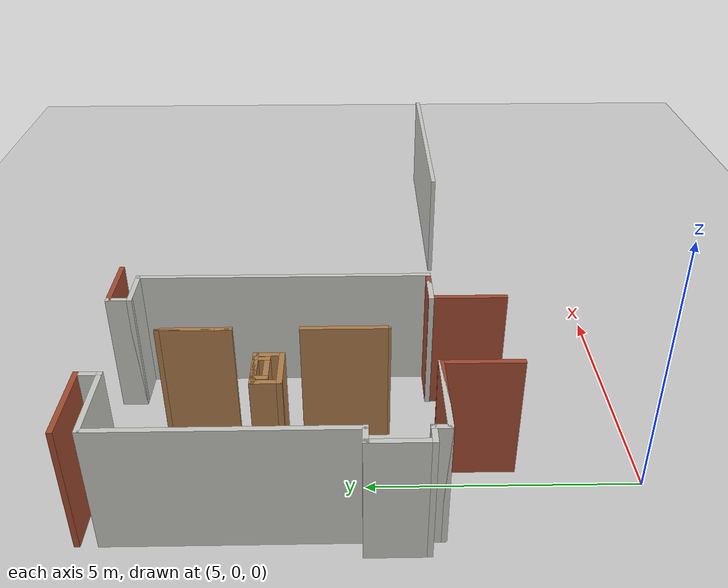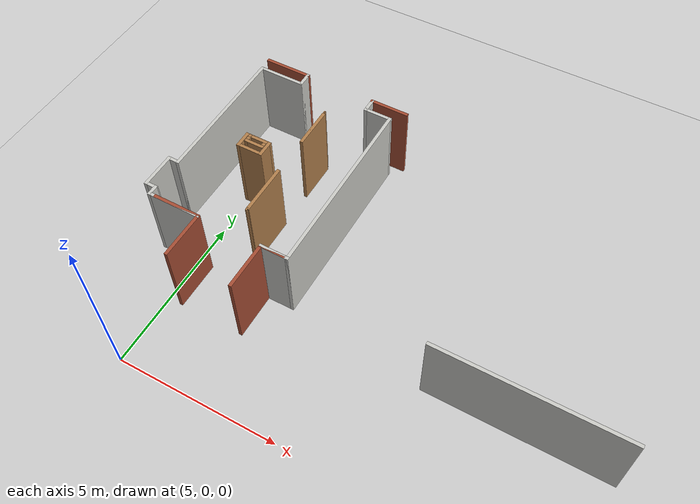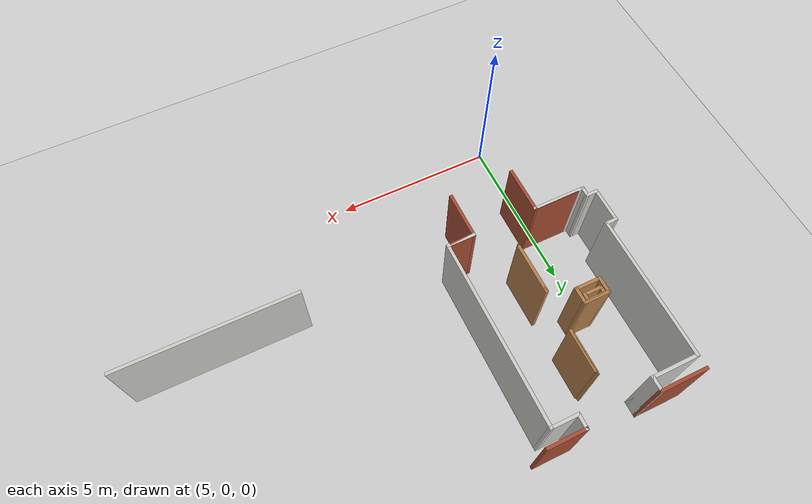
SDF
<sdf version="1.7">
 <world name="default">
  <model name="ground_plane">
   <static>1</static>
   <link name="link">
    <collision name="collision">
     <geometry><plane><normal>0 0 1</normal><size>100 100</size></plane></geometry>
     <surface><friction><ode><mu>100</mu><mu2>50</mu2></ode></friction></surface>
    </collision>
    <visual name="visual">
     <cast_shadows>0</cast_shadows>
     <geometry><plane><normal>0 0 1</normal><size>100 100</size></plane></geometry>
     <material>
      <script><uri>file://media/materials/scripts/gazebo.material</uri><name>Gazebo/Grey</name></script>
     </material>
    </visual>
   </link>
  </model>
  <model name="miraikan_5F_gate_and_elevator">
   <link name="Wall_268">
    <pose>18.385 5.81 0 0 -0 0</pose>
    <visual name="Wall_268_Visual">
     <pose>0 0 1.25 0 -0 0</pose>
     <geometry><box><size>5.47 0.1 2.5</size></box></geometry>
     <material>
      <script><uri>file://media/materials/scripts/gazebo.material</uri><name>Gazebo/CeilingTiled</name></script>
      <ambient>1 1 1 1</ambient>
      <shader type="pixel"/>
     </material>
     <meta><layer>0</layer></meta>
    </visual>
    <collision name="Wall_268_Collision">
     <pose>0 0 1.25 0 -0 0</pose>
     <geometry><box><size>5.47 0.1 2.5</size></box></geometry>
     <surface>
      <friction>
       <ode><mu>1</mu><mu2>1</mu2><fdir1>0 0 0</fdir1><slip1>0</slip1><slip2>0</slip2></ode>
       <torsional>
        <coefficient>1</coefficient>
        <patch_radius>0</patch_radius>
        <surface_radius>0</surface_radius>
        <use_patch_radius>1</use_patch_radius>
        <ode><slip>0</slip></ode>
       </torsional>
      </friction>
      <bounce><restitution_coefficient>0</restitution_coefficient><threshold>1e+06</threshold></bounce>
      <contact>
       <collide_without_contact>0</collide_without_contact>
       <collide_without_contact_bitmask>1</collide_without_contact_bitmask>
       <collide_bitmask>1</collide_bitmask>
       <ode>
        <soft_cfm>0</soft_cfm>
        <soft_erp>0.2</soft_erp>
        <kp>1e+13</kp>
        <kd>1</kd>
        <max_vel>0.01</max_vel>
        <min_depth>0</min_depth>
       </ode>
       <bullet>
        <split_impulse>1</split_impulse>
        <split_impulse_penetration_threshold>-0.01</split_impulse_penetration_threshold>
        <soft_cfm>0</soft_cfm>
        <soft_erp>0.2</soft_erp>
        <kp>1e+13</kp>
        <kd>1</kd>
       </bullet>
      </contact>
     </surface>
    </collision>
   </link>
   <link name="Wall_313">
    <pose>10.96 6.28 0 0 -0 0</pose>
    <visual name="Wall_313_Visual">
     <pose>0 0 1.25 0 -0 0</pose>
     <geometry><box><size>0.92 0.1 2.5</size></box></geometry>
     <material>
      <script><uri>file://media/materials/scripts/gazebo.material</uri><name>Gazebo/CeilingTiled</name></script>
      <ambient>1 1 1 1</ambient>
      <shader type="pixel"/>
     </material>
     <meta><layer>0</layer></meta>
    </visual>
    <collision name="Wall_313_Collision">
     <pose>0 0 1.25 0 -0 0</pose>
     <geometry><box><size>0.92 0.1 2.5</size></box></geometry>
     <surface>
      <friction>
       <ode><mu>1</mu><mu2>1</mu2><fdir1>0 0 0</fdir1><slip1>0</slip1><slip2>0</slip2></ode>
       <torsional>
        <coefficient>1</coefficient>
        <patch_radius>0</patch_radius>
        <surface_radius>0</surface_radius>
        <use_patch_radius>1</use_patch_radius>
        <ode><slip>0</slip></ode>
       </torsional>
      </friction>
      <bounce><restitution_coefficient>0</restitution_coefficient><threshold>1e+06</threshold></bounce>
      <contact>
       <collide_without_contact>0</collide_without_contact>
       <collide_without_contact_bitmask>1</collide_without_contact_bitmask>
       <collide_bitmask>1</collide_bitmask>
       <ode>
        <soft_cfm>0</soft_cfm>
        <soft_erp>0.2</soft_erp>
        <kp>1e+13</kp>
        <kd>1</kd>
        <max_vel>0.01</max_vel>
        <min_depth>0</min_depth>
       </ode>
       <bullet>
        <split_impulse>1</split_impulse>
        <split_impulse_penetration_threshold>-0.01</split_impulse_penetration_threshold>
        <soft_cfm>0</soft_cfm>
        <soft_erp>0.2</soft_erp>
        <kp>1e+13</kp>
        <kd>1</kd>
       </bullet>
      </contact>
     </surface>
    </collision>
   </link>
   <link name="Wall_315">
    <pose>7.725 6.28 0 0 -0 3.14159</pose>
    <visual name="Wall_315_Visual">
     <pose>0 0 1.25 0 -0 0</pose>
     <geometry><box><size>1.71 0.1 2.5</size></box></geometry>
     <material>
      <script><uri>file://media/materials/scripts/gazebo.material</uri><name>Gazebo/CeilingTiled</name></script>
      <ambient>1 1 1 1</ambient>
      <shader type="pixel"/>
     </material>
     <meta><layer>0</layer></meta>
    </visual>
    <collision name="Wall_315_Collision">
     <pose>0 0 1.25 0 -0 0</pose>
     <geometry><box><size>1.71 0.1 2.5</size></box></geometry>
     <surface>
      <friction>
       <ode><mu>1</mu><mu2>1</mu2><fdir1>0 0 0</fdir1><slip1>0</slip1><slip2>0</slip2></ode>
       <torsional>
        <coefficient>1</coefficient>
        <patch_radius>0</patch_radius>
        <surface_radius>0</surface_radius>
        <use_patch_radius>1</use_patch_radius>
        <ode><slip>0</slip></ode>
       </torsional>
      </friction>
      <bounce><restitution_coefficient>0</restitution_coefficient><threshold>1e+06</threshold></bounce>
      <contact>
       <collide_without_contact>0</collide_without_contact>
       <collide_without_contact_bitmask>1</collide_without_contact_bitmask>
       <collide_bitmask>1</collide_bitmask>
       <ode>
        <soft_cfm>0</soft_cfm>
        <soft_erp>0.2</soft_erp>
        <kp>1e+13</kp>
        <kd>1</kd>
        <max_vel>0.01</max_vel>
        <min_depth>0</min_depth>
       </ode>
       <bullet>
        <split_impulse>1</split_impulse>
        <split_impulse_penetration_threshold>-0.01</split_impulse_penetration_threshold>
        <soft_cfm>0</soft_cfm>
        <soft_erp>0.2</soft_erp>
        <kp>1e+13</kp>
        <kd>1</kd>
       </bullet>
      </contact>
     </surface>
    </collision>
   </link>
   <link name="Wall_321">
    <pose>6.92 6.41 0 0 -0 1.5708</pose>
    <visual name="Wall_321_Visual">
     <pose>0 0 1.25 0 -0 0</pose>
     <geometry><box><size>0.36 0.1 2.5</size></box></geometry>
     <material>
      <script><uri>file://media/materials/scripts/gazebo.material</uri><name>Gazebo/CeilingTiled</name></script>
      <ambient>1 1 1 1</ambient>
      <shader type="pixel"/>
     </material>
     <meta><layer>0</layer></meta>
    </visual>
    <collision name="Wall_321_Collision">
     <pose>0 0 1.25 0 -0 0</pose>
     <geometry><box><size>0.36 0.1 2.5</size></box></geometry>
     <surface>
      <friction>
       <ode><mu>1</mu><mu2>1</mu2><fdir1>0 0 0</fdir1><slip1>0</slip1><slip2>0</slip2></ode>
       <torsional>
        <coefficient>1</coefficient>
        <patch_radius>0</patch_radius>
        <surface_radius>0</surface_radius>
        <use_patch_radius>1</use_patch_radius>
        <ode><slip>0</slip></ode>
       </torsional>
      </friction>
      <bounce><restitution_coefficient>0</restitution_coefficient><threshold>1e+06</threshold></bounce>
      <contact>
       <collide_without_contact>0</collide_without_contact>
       <collide_without_contact_bitmask>1</collide_without_contact_bitmask>
       <collide_bitmask>1</collide_bitmask>
       <ode>
        <soft_cfm>0</soft_cfm>
        <soft_erp>0.2</soft_erp>
        <kp>1e+13</kp>
        <kd>1</kd>
        <max_vel>0.01</max_vel>
        <min_depth>0</min_depth>
       </ode>
       <bullet>
        <split_impulse>1</split_impulse>
        <split_impulse_penetration_threshold>-0.01</split_impulse_penetration_threshold>
        <soft_cfm>0</soft_cfm>
        <soft_erp>0.2</soft_erp>
        <kp>1e+13</kp>
        <kd>1</kd>
       </bullet>
      </contact>
     </surface>
    </collision>
   </link>
   <link name="Wall_323">
    <pose>6.765 6.54 0 0 -0 3.14159</pose>
    <visual name="Wall_323_Visual">
     <pose>0 0 1.25 0 -0 0</pose>
     <geometry><box><size>0.41 0.1 2.5</size></box></geometry>
     <material>
      <script><uri>file://media/materials/scripts/gazebo.material</uri><name>Gazebo/CeilingTiled</name></script>
      <ambient>1 1 1 1</ambient>
      <shader type="pixel"/>
     </material>
     <meta><layer>0</layer></meta>
    </visual>
    <collision name="Wall_323_Collision">
     <pose>0 0 1.25 0 -0 0</pose>
     <geometry><box><size>0.41 0.1 2.5</size></box></geometry>
     <surface>
      <friction>
       <ode><mu>1</mu><mu2>1</mu2><fdir1>0 0 0</fdir1><slip1>0</slip1><slip2>0</slip2></ode>
       <torsional>
        <coefficient>1</coefficient>
        <patch_radius>0</patch_radius>
        <surface_radius>0</surface_radius>
        <use_patch_radius>1</use_patch_radius>
        <ode><slip>0</slip></ode>
       </torsional>
      </friction>
      <bounce><restitution_coefficient>0</restitution_coefficient><threshold>1e+06</threshold></bounce>
      <contact>
       <collide_without_contact>0</collide_without_contact>
       <collide_without_contact_bitmask>1</collide_without_contact_bitmask>
       <collide_bitmask>1</collide_bitmask>
       <ode>
        <soft_cfm>0</soft_cfm>
        <soft_erp>0.2</soft_erp>
        <kp>1e+13</kp>
        <kd>1</kd>
        <max_vel>0.01</max_vel>
        <min_depth>0</min_depth>
       </ode>
       <bullet>
        <split_impulse>1</split_impulse>
        <split_impulse_penetration_threshold>-0.01</split_impulse_penetration_threshold>
        <soft_cfm>0</soft_cfm>
        <soft_erp>0.2</soft_erp>
        <kp>1e+13</kp>
        <kd>1</kd>
       </bullet>
      </contact>
     </surface>
    </collision>
   </link>
   <link name="Wall_326">
    <pose>6.61 7.065 0 0 -0 1.5708</pose>
    <visual name="Wall_326_Visual">
     <pose>0 0 1.25 0 -0 0</pose>
     <geometry><box><size>1.15 0.1 2.5</size></box></geometry>
     <material>
      <script><uri>file://media/materials/scripts/gazebo.material</uri><name>Gazebo/CeilingTiled</name></script>
      <ambient>1 1 1 1</ambient>
      <shader type="pixel"/>
     </material>
     <meta><layer>0</layer></meta>
    </visual>
    <collision name="Wall_326_Collision">
     <pose>0 0 1.25 0 -0 0</pose>
     <geometry><box><size>1.15 0.1 2.5</size></box></geometry>
     <surface>
      <friction>
       <ode><mu>1</mu><mu2>1</mu2><fdir1>0 0 0</fdir1><slip1>0</slip1><slip2>0</slip2></ode>
       <torsional>
        <coefficient>1</coefficient>
        <patch_radius>0</patch_radius>
        <surface_radius>0</surface_radius>
        <use_patch_radius>1</use_patch_radius>
        <ode><slip>0</slip></ode>
       </torsional>
      </friction>
      <bounce><restitution_coefficient>0</restitution_coefficient><threshold>1e+06</threshold></bounce>
      <contact>
       <collide_without_contact>0</collide_without_contact>
       <collide_without_contact_bitmask>1</collide_without_contact_bitmask>
       <collide_bitmask>1</collide_bitmask>
       <ode>
        <soft_cfm>0</soft_cfm>
        <soft_erp>0.2</soft_erp>
        <kp>1e+13</kp>
        <kd>1</kd>
        <max_vel>0.01</max_vel>
        <min_depth>0</min_depth>
       </ode>
       <bullet>
        <split_impulse>1</split_impulse>
        <split_impulse_penetration_threshold>-0.01</split_impulse_penetration_threshold>
        <soft_cfm>0</soft_cfm>
        <soft_erp>0.2</soft_erp>
        <kp>1e+13</kp>
        <kd>1</kd>
       </bullet>
      </contact>
     </surface>
    </collision>
   </link>
   <link name="Wall_328">
    <pose>6.765 7.59 0 0 -0 0</pose>
    <visual name="Wall_328_Visual">
     <pose>0 0 1.25 0 -0 0</pose>
     <geometry><box><size>0.41 0.1 2.5</size></box></geometry>
     <material>
      <script><uri>file://media/materials/scripts/gazebo.material</uri><name>Gazebo/CeilingTiled</name></script>
      <ambient>1 1 1 1</ambient>
      <shader type="pixel"/>
     </material>
     <meta><layer>0</layer></meta>
    </visual>
    <collision name="Wall_328_Collision">
     <pose>0 0 1.25 0 -0 0</pose>
     <geometry><box><size>0.41 0.1 2.5</size></box></geometry>
     <surface>
      <friction>
       <ode><mu>1</mu><mu2>1</mu2><fdir1>0 0 0</fdir1><slip1>0</slip1><slip2>0</slip2></ode>
       <torsional>
        <coefficient>1</coefficient>
        <patch_radius>0</patch_radius>
        <surface_radius>0</surface_radius>
        <use_patch_radius>1</use_patch_radius>
        <ode><slip>0</slip></ode>
       </torsional>
      </friction>
      <bounce><restitution_coefficient>0</restitution_coefficient><threshold>1e+06</threshold></bounce>
      <contact>
       <collide_without_contact>0</collide_without_contact>
       <collide_without_contact_bitmask>1</collide_without_contact_bitmask>
       <collide_bitmask>1</collide_bitmask>
       <ode>
        <soft_cfm>0</soft_cfm>
        <soft_erp>0.2</soft_erp>
        <kp>1e+13</kp>
        <kd>1</kd>
        <max_vel>0.01</max_vel>
        <min_depth>0</min_depth>
       </ode>
       <bullet>
        <split_impulse>1</split_impulse>
        <split_impulse_penetration_threshold>-0.01</split_impulse_penetration_threshold>
        <soft_cfm>0</soft_cfm>
        <soft_erp>0.2</soft_erp>
        <kp>1e+13</kp>
        <kd>1</kd>
       </bullet>
      </contact>
     </surface>
    </collision>
   </link>
   <link name="Wall_330">
    <pose>6.92 9.785 0 0 -0 1.5708</pose>
    <visual name="Wall_330_Visual">
     <pose>0 0 1.25 0 -0 0</pose>
     <geometry><box><size>4.49 0.1 2.5</size></box></geometry>
     <material>
      <script><uri>file://media/materials/scripts/gazebo.material</uri><name>Gazebo/CeilingTiled</name></script>
      <ambient>1 1 1 1</ambient>
      <shader type="pixel"/>
     </material>
     <meta><layer>0</layer></meta>
    </visual>
    <collision name="Wall_330_Collision">
     <pose>0 0 1.25 0 -0 0</pose>
     <geometry><box><size>4.49 0.1 2.5</size></box></geometry>
     <surface>
      <friction>
       <ode><mu>1</mu><mu2>1</mu2><fdir1>0 0 0</fdir1><slip1>0</slip1><slip2>0</slip2></ode>
       <torsional>
        <coefficient>1</coefficient>
        <patch_radius>0</patch_radius>
        <surface_radius>0</surface_radius>
        <use_patch_radius>1</use_patch_radius>
        <ode><slip>0</slip></ode>
       </torsional>
      </friction>
      <bounce><restitution_coefficient>0</restitution_coefficient><threshold>1e+06</threshold></bounce>
      <contact>
       <collide_without_contact>0</collide_without_contact>
       <collide_without_contact_bitmask>1</collide_without_contact_bitmask>
       <collide_bitmask>1</collide_bitmask>
       <ode>
        <soft_cfm>0</soft_cfm>
        <soft_erp>0.2</soft_erp>
        <kp>1e+13</kp>
        <kd>1</kd>
        <max_vel>0.01</max_vel>
        <min_depth>0</min_depth>
       </ode>
       <bullet>
        <split_impulse>1</split_impulse>
        <split_impulse_penetration_threshold>-0.01</split_impulse_penetration_threshold>
        <soft_cfm>0</soft_cfm>
        <soft_erp>0.2</soft_erp>
        <kp>1e+13</kp>
        <kd>1</kd>
       </bullet>
      </contact>
     </surface>
    </collision>
   </link>
   <link name="Wall_332">
    <pose>7.62 11.98 0 0 -0 0</pose>
    <visual name="Wall_332_Visual">
     <pose>0 0 1.25 0 -0 0</pose>
     <geometry><box><size>1.5 0.1 2.5</size></box></geometry>
     <material>
      <script><uri>file://media/materials/scripts/gazebo.material</uri><name>Gazebo/CeilingTiled</name></script>
      <ambient>1 1 1 1</ambient>
      <shader type="pixel"/>
     </material>
     <meta><layer>0</layer></meta>
    </visual>
    <collision name="Wall_332_Collision">
     <pose>0 0 1.25 0 -0 0</pose>
     <geometry><box><size>1.5 0.1 2.5</size></box></geometry>
     <surface>
      <friction>
       <ode><mu>1</mu><mu2>1</mu2><fdir1>0 0 0</fdir1><slip1>0</slip1><slip2>0</slip2></ode>
       <torsional>
        <coefficient>1</coefficient>
        <patch_radius>0</patch_radius>
        <surface_radius>0</surface_radius>
        <use_patch_radius>1</use_patch_radius>
        <ode><slip>0</slip></ode>
       </torsional>
      </friction>
      <bounce><restitution_coefficient>0</restitution_coefficient><threshold>1e+06</threshold></bounce>
      <contact>
       <collide_without_contact>0</collide_without_contact>
       <collide_without_contact_bitmask>1</collide_without_contact_bitmask>
       <collide_bitmask>1</collide_bitmask>
       <ode>
        <soft_cfm>0</soft_cfm>
        <soft_erp>0.2</soft_erp>
        <kp>1e+13</kp>
        <kd>1</kd>
        <max_vel>0.01</max_vel>
        <min_depth>0</min_depth>
       </ode>
       <bullet>
        <split_impulse>1</split_impulse>
        <split_impulse_penetration_threshold>-0.01</split_impulse_penetration_threshold>
        <soft_cfm>0</soft_cfm>
        <soft_erp>0.2</soft_erp>
        <kp>1e+13</kp>
        <kd>1</kd>
       </bullet>
      </contact>
     </surface>
    </collision>
   </link>
   <link name="Wall_334">
    <pose>11.37 9.13 0 0 -0 1.5708</pose>
    <visual name="Wall_334_Visual">
     <pose>0 0 1.25 0 -0 0</pose>
     <geometry><box><size>5.8 0.1 2.5</size></box></geometry>
     <material>
      <script><uri>file://media/materials/scripts/gazebo.material</uri><name>Gazebo/CeilingTiled</name></script>
      <ambient>1 1 1 1</ambient>
      <shader type="pixel"/>
     </material>
     <meta><layer>0</layer></meta>
    </visual>
    <collision name="Wall_334_Collision">
     <pose>0 0 1.25 0 -0 0</pose>
     <geometry><box><size>5.8 0.1 2.5</size></box></geometry>
     <surface>
      <friction>
       <ode><mu>1</mu><mu2>1</mu2><fdir1>0 0 0</fdir1><slip1>0</slip1><slip2>0</slip2></ode>
       <torsional>
        <coefficient>1</coefficient>
        <patch_radius>0</patch_radius>
        <surface_radius>0</surface_radius>
        <use_patch_radius>1</use_patch_radius>
        <ode><slip>0</slip></ode>
       </torsional>
      </friction>
      <bounce><restitution_coefficient>0</restitution_coefficient><threshold>1e+06</threshold></bounce>
      <contact>
       <collide_without_contact>0</collide_without_contact>
       <collide_without_contact_bitmask>1</collide_without_contact_bitmask>
       <collide_bitmask>1</collide_bitmask>
       <ode>
        <soft_cfm>0</soft_cfm>
        <soft_erp>0.2</soft_erp>
        <kp>1e+13</kp>
        <kd>1</kd>
        <max_vel>0.01</max_vel>
        <min_depth>0</min_depth>
       </ode>
       <bullet>
        <split_impulse>1</split_impulse>
        <split_impulse_penetration_threshold>-0.01</split_impulse_penetration_threshold>
        <soft_cfm>0</soft_cfm>
        <soft_erp>0.2</soft_erp>
        <kp>1e+13</kp>
        <kd>1</kd>
       </bullet>
      </contact>
     </surface>
    </collision>
   </link>
   <link name="Wall_336">
    <pose>10.97 11.98 0 0 -0 3.14159</pose>
    <visual name="Wall_336_Visual">
     <pose>0 0 1.25 0 -0 0</pose>
     <geometry><box><size>0.9 0.1 2.5</size></box></geometry>
     <material>
      <script><uri>file://media/materials/scripts/gazebo.material</uri><name>Gazebo/CeilingTiled</name></script>
      <ambient>1 1 1 1</ambient>
      <shader type="pixel"/>
     </material>
     <meta><layer>0</layer></meta>
    </visual>
    <collision name="Wall_336_Collision">
     <pose>0 0 1.25 0 -0 0</pose>
     <geometry><box><size>0.9 0.1 2.5</size></box></geometry>
     <surface>
      <friction>
       <ode><mu>1</mu><mu2>1</mu2><fdir1>0 0 0</fdir1><slip1>0</slip1><slip2>0</slip2></ode>
       <torsional>
        <coefficient>1</coefficient>
        <patch_radius>0</patch_radius>
        <surface_radius>0</surface_radius>
        <use_patch_radius>1</use_patch_radius>
        <ode><slip>0</slip></ode>
       </torsional>
      </friction>
      <bounce><restitution_coefficient>0</restitution_coefficient><threshold>1e+06</threshold></bounce>
      <contact>
       <collide_without_contact>0</collide_without_contact>
       <collide_without_contact_bitmask>1</collide_without_contact_bitmask>
       <collide_bitmask>1</collide_bitmask>
       <ode>
        <soft_cfm>0</soft_cfm>
        <soft_erp>0.2</soft_erp>
        <kp>1e+13</kp>
        <kd>1</kd>
        <max_vel>0.01</max_vel>
        <min_depth>0</min_depth>
       </ode>
       <bullet>
        <split_impulse>1</split_impulse>
        <split_impulse_penetration_threshold>-0.01</split_impulse_penetration_threshold>
        <soft_cfm>0</soft_cfm>
        <soft_erp>0.2</soft_erp>
        <kp>1e+13</kp>
        <kd>1</kd>
       </bullet>
      </contact>
     </surface>
    </collision>
   </link>
   <link name="Wall_338">
    <pose>8.32 12.18 0 0 -0 1.5708</pose>
    <visual name="Wall_338_Visual">
     <pose>0 0 1.25 0 -0 0</pose>
     <geometry><box><size>0.5 0.1 2.5</size></box></geometry>
     <material>
      <script><uri>file://media/materials/scripts/gazebo.material</uri><name>Gazebo/CeilingTiled</name></script>
      <ambient>1 1 1 1</ambient>
      <shader type="pixel"/>
     </material>
     <meta><layer>0</layer></meta>
    </visual>
    <collision name="Wall_338_Collision">
     <pose>0 0 1.25 0 -0 0</pose>
     <geometry><box><size>0.5 0.1 2.5</size></box></geometry>
     <surface>
      <friction>
       <ode><mu>1</mu><mu2>1</mu2><fdir1>0 0 0</fdir1><slip1>0</slip1><slip2>0</slip2></ode>
       <torsional>
        <coefficient>1</coefficient>
        <patch_radius>0</patch_radius>
        <surface_radius>0</surface_radius>
        <use_patch_radius>1</use_patch_radius>
        <ode><slip>0</slip></ode>
       </torsional>
      </friction>
      <bounce><restitution_coefficient>0</restitution_coefficient><threshold>1e+06</threshold></bounce>
      <contact>
       <collide_without_contact>0</collide_without_contact>
       <collide_without_contact_bitmask>1</collide_without_contact_bitmask>
       <collide_bitmask>1</collide_bitmask>
       <ode>
        <soft_cfm>0</soft_cfm>
        <soft_erp>0.2</soft_erp>
        <kp>1e+13</kp>
        <kd>1</kd>
        <max_vel>0.01</max_vel>
        <min_depth>0</min_depth>
       </ode>
       <bullet>
        <split_impulse>1</split_impulse>
        <split_impulse_penetration_threshold>-0.01</split_impulse_penetration_threshold>
        <soft_cfm>0</soft_cfm>
        <soft_erp>0.2</soft_erp>
        <kp>1e+13</kp>
        <kd>1</kd>
       </bullet>
      </contact>
     </surface>
    </collision>
   </link>
   <link name="Wall_340">
    <pose>10.57 12.18 0 0 -0 1.5708</pose>
    <visual name="Wall_340_Visual">
     <pose>0 0 1.25 0 -0 0</pose>
     <geometry><box><size>0.5 0.1 2.5</size></box></geometry>
     <material>
      <script><uri>file://media/materials/scripts/gazebo.material</uri><name>Gazebo/CeilingTiled</name></script>
      <ambient>1 1 1 1</ambient>
      <shader type="pixel"/>
     </material>
     <meta><layer>0</layer></meta>
    </visual>
    <collision name="Wall_340_Collision">
     <pose>0 0 1.25 0 -0 0</pose>
     <geometry><box><size>0.5 0.1 2.5</size></box></geometry>
     <surface>
      <friction>
       <ode><mu>1</mu><mu2>1</mu2><fdir1>0 0 0</fdir1><slip1>0</slip1><slip2>0</slip2></ode>
       <torsional>
        <coefficient>1</coefficient>
        <patch_radius>0</patch_radius>
        <surface_radius>0</surface_radius>
        <use_patch_radius>1</use_patch_radius>
        <ode><slip>0</slip></ode>
       </torsional>
      </friction>
      <bounce><restitution_coefficient>0</restitution_coefficient><threshold>1e+06</threshold></bounce>
      <contact>
       <collide_without_contact>0</collide_without_contact>
       <collide_without_contact_bitmask>1</collide_without_contact_bitmask>
       <collide_bitmask>1</collide_bitmask>
       <ode>
        <soft_cfm>0</soft_cfm>
        <soft_erp>0.2</soft_erp>
        <kp>1e+13</kp>
        <kd>1</kd>
        <max_vel>0.01</max_vel>
        <min_depth>0</min_depth>
       </ode>
       <bullet>
        <split_impulse>1</split_impulse>
        <split_impulse_penetration_threshold>-0.01</split_impulse_penetration_threshold>
        <soft_cfm>0</soft_cfm>
        <soft_erp>0.2</soft_erp>
        <kp>1e+13</kp>
        <kd>1</kd>
       </bullet>
      </contact>
     </surface>
    </collision>
   </link>
   <link name="Wall_342">
    <pose>7.62 12.38 0 0 -0 3.14159</pose>
    <visual name="Wall_342_Visual">
     <pose>0 0 1.25 0 -0 0</pose>
     <geometry><box><size>1.5 0.1 2.5</size></box></geometry>
     <material>
      <script><uri>file://media/materials/scripts/gazebo.material</uri><name>Gazebo/Bricks</name></script>
      <ambient>1 1 1 1</ambient>
      <shader type="pixel"/>
     </material>
     <meta><layer>0</layer></meta>
    </visual>
    <collision name="Wall_342_Collision">
     <pose>0 0 1.25 0 -0 0</pose>
     <geometry><box><size>1.5 0.1 2.5</size></box></geometry>
     <surface>
      <friction>
       <ode><mu>1</mu><mu2>1</mu2><fdir1>0 0 0</fdir1><slip1>0</slip1><slip2>0</slip2></ode>
       <torsional>
        <coefficient>1</coefficient>
        <patch_radius>0</patch_radius>
        <surface_radius>0</surface_radius>
        <use_patch_radius>1</use_patch_radius>
        <ode><slip>0</slip></ode>
       </torsional>
      </friction>
      <bounce><restitution_coefficient>0</restitution_coefficient><threshold>1e+06</threshold></bounce>
      <contact>
       <collide_without_contact>0</collide_without_contact>
       <collide_without_contact_bitmask>1</collide_without_contact_bitmask>
       <collide_bitmask>1</collide_bitmask>
       <ode>
        <soft_cfm>0</soft_cfm>
        <soft_erp>0.2</soft_erp>
        <kp>1e+13</kp>
        <kd>1</kd>
        <max_vel>0.01</max_vel>
        <min_depth>0</min_depth>
       </ode>
       <bullet>
        <split_impulse>1</split_impulse>
        <split_impulse_penetration_threshold>-0.01</split_impulse_penetration_threshold>
        <soft_cfm>0</soft_cfm>
        <soft_erp>0.2</soft_erp>
        <kp>1e+13</kp>
        <kd>1</kd>
       </bullet>
      </contact>
     </surface>
    </collision>
   </link>
   <link name="Wall_344">
    <pose>11.14 12.38 0 0 -0 0</pose>
    <visual name="Wall_344_Visual">
     <pose>0 0 1.25 0 -0 0</pose>
     <geometry><box><size>1.24 0.1 2.5</size></box></geometry>
     <material>
      <script><uri>file://media/materials/scripts/gazebo.material</uri><name>Gazebo/Bricks</name></script>
      <ambient>1 1 1 1</ambient>
      <shader type="pixel"/>
     </material>
     <meta><layer>0</layer></meta>
    </visual>
    <collision name="Wall_344_Collision">
     <pose>0 0 1.25 0 -0 0</pose>
     <geometry><box><size>1.24 0.1 2.5</size></box></geometry>
     <surface>
      <friction>
       <ode><mu>1</mu><mu2>1</mu2><fdir1>0 0 0</fdir1><slip1>0</slip1><slip2>0</slip2></ode>
       <torsional>
        <coefficient>1</coefficient>
        <patch_radius>0</patch_radius>
        <surface_radius>0</surface_radius>
        <use_patch_radius>1</use_patch_radius>
        <ode><slip>0</slip></ode>
       </torsional>
      </friction>
      <bounce><restitution_coefficient>0</restitution_coefficient><threshold>1e+06</threshold></bounce>
      <contact>
       <collide_without_contact>0</collide_without_contact>
       <collide_without_contact_bitmask>1</collide_without_contact_bitmask>
       <collide_bitmask>1</collide_bitmask>
       <ode>
        <soft_cfm>0</soft_cfm>
        <soft_erp>0.2</soft_erp>
        <kp>1e+13</kp>
        <kd>1</kd>
        <max_vel>0.01</max_vel>
        <min_depth>0</min_depth>
       </ode>
       <bullet>
        <split_impulse>1</split_impulse>
        <split_impulse_penetration_threshold>-0.01</split_impulse_penetration_threshold>
        <soft_cfm>0</soft_cfm>
        <soft_erp>0.2</soft_erp>
        <kp>1e+13</kp>
        <kd>1</kd>
       </bullet>
      </contact>
     </surface>
    </collision>
   </link>
   <link name="Wall_358">
    <pose>9.57 7.93 0 0 -0 1.5708</pose>
    <visual name="Wall_358_Visual">
     <pose>0 0 1.25 0 -0 0</pose>
     <geometry><box><size>1.6 0.1 2.5</size></box></geometry>
     <material>
      <script><uri>file://media/materials/scripts/gazebo.material</uri><name>Gazebo/Wood</name></script>
      <ambient>1 1 1 1</ambient>
      <shader type="pixel"/>
     </material>
     <meta><layer>0</layer></meta>
    </visual>
    <collision name="Wall_358_Collision">
     <pose>0 0 1.25 0 -0 0</pose>
     <geometry><box><size>1.6 0.1 2.5</size></box></geometry>
     <surface>
      <friction>
       <ode><mu>1</mu><mu2>1</mu2><fdir1>0 0 0</fdir1><slip1>0</slip1><slip2>0</slip2></ode>
       <torsional>
        <coefficient>1</coefficient>
        <patch_radius>0</patch_radius>
        <surface_radius>0</surface_radius>
        <use_patch_radius>1</use_patch_radius>
        <ode><slip>0</slip></ode>
       </torsional>
      </friction>
      <bounce><restitution_coefficient>0</restitution_coefficient><threshold>1e+06</threshold></bounce>
      <contact>
       <collide_without_contact>0</collide_without_contact>
       <collide_without_contact_bitmask>1</collide_without_contact_bitmask>
       <collide_bitmask>1</collide_bitmask>
       <ode>
        <soft_cfm>0</soft_cfm>
        <soft_erp>0.2</soft_erp>
        <kp>1e+13</kp>
        <kd>1</kd>
        <max_vel>0.01</max_vel>
        <min_depth>0</min_depth>
       </ode>
       <bullet>
        <split_impulse>1</split_impulse>
        <split_impulse_penetration_threshold>-0.01</split_impulse_penetration_threshold>
        <soft_cfm>0</soft_cfm>
        <soft_erp>0.2</soft_erp>
        <kp>1e+13</kp>
        <kd>1</kd>
       </bullet>
      </contact>
     </surface>
    </collision>
   </link>
   <link name="Wall_362">
    <pose>9.57 10.58 0 0 -0 1.5708</pose>
    <visual name="Wall_362_Visual">
     <pose>0 0 1.25 0 -0 0</pose>
     <geometry><box><size>1.3 0.1 2.5</size></box></geometry>
     <material>
      <script><uri>file://media/materials/scripts/gazebo.material</uri><name>Gazebo/Wood</name></script>
      <ambient>1 1 1 1</ambient>
      <shader type="pixel"/>
     </material>
     <meta><layer>0</layer></meta>
    </visual>
    <collision name="Wall_362_Collision">
     <pose>0 0 1.25 0 -0 0</pose>
     <geometry><box><size>1.3 0.1 2.5</size></box></geometry>
     <surface>
      <friction>
       <ode><mu>1</mu><mu2>1</mu2><fdir1>0 0 0</fdir1><slip1>0</slip1><slip2>0</slip2></ode>
       <torsional>
        <coefficient>1</coefficient>
        <patch_radius>0</patch_radius>
        <surface_radius>0</surface_radius>
        <use_patch_radius>1</use_patch_radius>
        <ode><slip>0</slip></ode>
       </torsional>
      </friction>
      <bounce><restitution_coefficient>0</restitution_coefficient><threshold>1e+06</threshold></bounce>
      <contact>
       <collide_without_contact>0</collide_without_contact>
       <collide_without_contact_bitmask>1</collide_without_contact_bitmask>
       <collide_bitmask>1</collide_bitmask>
       <ode>
        <soft_cfm>0</soft_cfm>
        <soft_erp>0.2</soft_erp>
        <kp>1e+13</kp>
        <kd>1</kd>
        <max_vel>0.01</max_vel>
        <min_depth>0</min_depth>
       </ode>
       <bullet>
        <split_impulse>1</split_impulse>
        <split_impulse_penetration_threshold>-0.01</split_impulse_penetration_threshold>
        <soft_cfm>0</soft_cfm>
        <soft_erp>0.2</soft_erp>
        <kp>1e+13</kp>
        <kd>1</kd>
       </bullet>
      </contact>
     </surface>
    </collision>
   </link>
   <link name="Wall_378">
    <pose>8.794 9.208 0 0 -0 1.5708</pose>
    <visual name="Wall_378_Visual">
     <pose>0 0 1.25 0 -0 0</pose>
     <geometry><box><size>0.55 0.1 2.5</size></box></geometry>
     <material>
      <script><uri>file://media/materials/scripts/gazebo.material</uri><name>Gazebo/Wood</name></script>
      <ambient>1 1 1 1</ambient>
      <shader type="pixel"/>
     </material>
     <meta><layer>0</layer></meta>
    </visual>
    <collision name="Wall_378_Collision">
     <pose>0 0 1.25 0 -0 0</pose>
     <geometry><box><size>0.55 0.1 2.5</size></box></geometry>
     <surface>
      <friction>
       <ode><mu>1</mu><mu2>1</mu2><fdir1>0 0 0</fdir1><slip1>0</slip1><slip2>0</slip2></ode>
       <torsional>
        <coefficient>1</coefficient>
        <patch_radius>0</patch_radius>
        <surface_radius>0</surface_radius>
        <use_patch_radius>1</use_patch_radius>
        <ode><slip>0</slip></ode>
       </torsional>
      </friction>
      <bounce><restitution_coefficient>0</restitution_coefficient><threshold>1e+06</threshold></bounce>
      <contact>
       <collide_without_contact>0</collide_without_contact>
       <collide_without_contact_bitmask>1</collide_without_contact_bitmask>
       <collide_bitmask>1</collide_bitmask>
       <ode>
        <soft_cfm>0</soft_cfm>
        <soft_erp>0.2</soft_erp>
        <kp>1e+13</kp>
        <kd>1</kd>
        <max_vel>0.01</max_vel>
        <min_depth>0</min_depth>
       </ode>
       <bullet>
        <split_impulse>1</split_impulse>
        <split_impulse_penetration_threshold>-0.01</split_impulse_penetration_threshold>
        <soft_cfm>0</soft_cfm>
        <soft_erp>0.2</soft_erp>
        <kp>1e+13</kp>
        <kd>1</kd>
       </bullet>
      </contact>
     </surface>
    </collision>
   </link>
   <link name="Wall_412">
    <pose>8.419 8.983 0 0 -0 3.14159</pose>
    <visual name="Wall_412_Visual">
     <pose>0 0 1.25 0 -0 0</pose>
     <geometry><box><size>0.85 0.1 2.5</size></box></geometry>
     <material>
      <script><uri>file://media/materials/scripts/gazebo.material</uri><name>Gazebo/Wood</name></script>
      <ambient>1 1 1 1</ambient>
      <shader type="pixel"/>
     </material>
     <meta><layer>0</layer></meta>
    </visual>
    <collision name="Wall_412_Collision">
     <pose>0 0 1.25 0 -0 0</pose>
     <geometry><box><size>0.85 0.1 2.5</size></box></geometry>
     <surface>
      <friction>
       <ode><mu>1</mu><mu2>1</mu2><fdir1>0 0 0</fdir1><slip1>0</slip1><slip2>0</slip2></ode>
       <torsional>
        <coefficient>1</coefficient>
        <patch_radius>0</patch_radius>
        <surface_radius>0</surface_radius>
        <use_patch_radius>1</use_patch_radius>
        <ode><slip>0</slip></ode>
       </torsional>
      </friction>
      <bounce><restitution_coefficient>0</restitution_coefficient><threshold>1e+06</threshold></bounce>
      <contact>
       <collide_without_contact>0</collide_without_contact>
       <collide_without_contact_bitmask>1</collide_without_contact_bitmask>
       <collide_bitmask>1</collide_bitmask>
       <ode>
        <soft_cfm>0</soft_cfm>
        <soft_erp>0.2</soft_erp>
        <kp>1e+13</kp>
        <kd>1</kd>
        <max_vel>0.01</max_vel>
        <min_depth>0</min_depth>
       </ode>
       <bullet>
        <split_impulse>1</split_impulse>
        <split_impulse_penetration_threshold>-0.01</split_impulse_penetration_threshold>
        <soft_cfm>0</soft_cfm>
        <soft_erp>0.2</soft_erp>
        <kp>1e+13</kp>
        <kd>1</kd>
       </bullet>
      </contact>
     </surface>
    </collision>
   </link>
   <link name="Wall_414">
    <pose>8.044 9.208 0 0 -0 1.5708</pose>
    <visual name="Wall_414_Visual">
     <pose>0 0 1.25 0 -0 0</pose>
     <geometry><box><size>0.55 0.1 2.5</size></box></geometry>
     <material>
      <script><uri>file://media/materials/scripts/gazebo.material</uri><name>Gazebo/Wood</name></script>
      <ambient>1 1 1 1</ambient>
      <shader type="pixel"/>
     </material>
     <meta><layer>0</layer></meta>
    </visual>
    <collision name="Wall_414_Collision">
     <pose>0 0 1.25 0 -0 0</pose>
     <geometry><box><size>0.55 0.1 2.5</size></box></geometry>
     <surface>
      <friction>
       <ode><mu>1</mu><mu2>1</mu2><fdir1>0 0 0</fdir1><slip1>0</slip1><slip2>0</slip2></ode>
       <torsional>
        <coefficient>1</coefficient>
        <patch_radius>0</patch_radius>
        <surface_radius>0</surface_radius>
        <use_patch_radius>1</use_patch_radius>
        <ode><slip>0</slip></ode>
       </torsional>
      </friction>
      <bounce><restitution_coefficient>0</restitution_coefficient><threshold>1e+06</threshold></bounce>
      <contact>
       <collide_without_contact>0</collide_without_contact>
       <collide_without_contact_bitmask>1</collide_without_contact_bitmask>
       <collide_bitmask>1</collide_bitmask>
       <ode>
        <soft_cfm>0</soft_cfm>
        <soft_erp>0.2</soft_erp>
        <kp>1e+13</kp>
        <kd>1</kd>
        <max_vel>0.01</max_vel>
        <min_depth>0</min_depth>
       </ode>
       <bullet>
        <split_impulse>1</split_impulse>
        <split_impulse_penetration_threshold>-0.01</split_impulse_penetration_threshold>
        <soft_cfm>0</soft_cfm>
        <soft_erp>0.2</soft_erp>
        <kp>1e+13</kp>
        <kd>1</kd>
       </bullet>
      </contact>
     </surface>
    </collision>
   </link>
   <link name="Wall_416">
    <pose>8.419 9.433 0 0 -0 0</pose>
    <visual name="Wall_416_Visual">
     <pose>0 0 1.25 0 -0 0</pose>
     <geometry><box><size>0.85 0.1 2.5</size></box></geometry>
     <material>
      <script><uri>file://media/materials/scripts/gazebo.material</uri><name>Gazebo/Wood</name></script>
      <ambient>1 1 1 1</ambient>
      <shader type="pixel"/>
     </material>
     <meta><layer>0</layer></meta>
    </visual>
    <collision name="Wall_416_Collision">
     <pose>0 0 1.25 0 -0 0</pose>
     <geometry><box><size>0.85 0.1 2.5</size></box></geometry>
     <surface>
      <friction>
       <ode><mu>1</mu><mu2>1</mu2><fdir1>0 0 0</fdir1><slip1>0</slip1><slip2>0</slip2></ode>
       <torsional>
        <coefficient>1</coefficient>
        <patch_radius>0</patch_radius>
        <surface_radius>0</surface_radius>
        <use_patch_radius>1</use_patch_radius>
        <ode><slip>0</slip></ode>
       </torsional>
      </friction>
      <bounce><restitution_coefficient>0</restitution_coefficient><threshold>1e+06</threshold></bounce>
      <contact>
       <collide_without_contact>0</collide_without_contact>
       <collide_without_contact_bitmask>1</collide_without_contact_bitmask>
       <collide_bitmask>1</collide_bitmask>
       <ode>
        <soft_cfm>0</soft_cfm>
        <soft_erp>0.2</soft_erp>
        <kp>1e+13</kp>
        <kd>1</kd>
        <max_vel>0.01</max_vel>
        <min_depth>0</min_depth>
       </ode>
       <bullet>
        <split_impulse>1</split_impulse>
        <split_impulse_penetration_threshold>-0.01</split_impulse_penetration_threshold>
        <soft_cfm>0</soft_cfm>
        <soft_erp>0.2</soft_erp>
        <kp>1e+13</kp>
        <kd>1</kd>
       </bullet>
      </contact>
     </surface>
    </collision>
   </link>
   <static>1</static>
   <pose>-3.12968 -2.57927 0 0 -0 0</pose>
  </model>
  <model name="Untitled">
   <pose>6.06058 5.4996 0 0 -0 0</pose>
   <link name="Wall_12">
    <collision name="Wall_12_Collision">
     <geometry><box><size>0.8 0.1 2.5</size></box></geometry>
     <pose>0 0 1.25 0 -0 0</pose>
    </collision>
    <visual name="Wall_12_Visual">
     <pose>0 0 1.25 0 -0 0</pose>
     <geometry><box><size>0.8 0.1 2.5</size></box></geometry>
     <material>
      <script><uri>file://media/materials/scripts/gazebo.material</uri><name>Gazebo/Bricks</name></script>
      <ambient>1 1 1 1</ambient>
     </material>
     <meta><layer>0</layer></meta>
    </visual>
    <pose>1.71 -1.798 0 0 -0 0</pose>
   </link>
   <link name="Wall_14">
    <collision name="Wall_14_Collision">
     <geometry><box><size>1.5 0.1 2.5</size></box></geometry>
     <pose>0 0 1.25 0 -0 0</pose>
    </collision>
    <visual name="Wall_14_Visual">
     <pose>0 0 1.25 0 -0 0</pose>
     <geometry><box><size>1.5 0.1 2.5</size></box></geometry>
     <material>
      <script><uri>file://media/materials/scripts/gazebo.material</uri><name>Gazebo/Bricks</name></script>
      <ambient>1 1 1 1</ambient>
     </material>
     <meta><layer>0</layer></meta>
    </visual>
    <pose>1.36 -2.498 0 0 -0 -1.5708</pose>
   </link>
   <link name="Wall_18">
    <collision name="Wall_18_Collision">
     <geometry><box><size>0.1 0.05 2.5</size></box></geometry>
     <pose>0 0 1.25 0 -0 0</pose>
    </collision>
    <visual name="Wall_18_Visual">
     <pose>0 0 1.25 0 -0 0</pose>
     <geometry><box><size>0.1 0.05 2.5</size></box></geometry>
     <material>
      <script><uri>file://media/materials/scripts/gazebo.material</uri><name>Gazebo/Wood</name></script>
      <ambient>1 1 1 1</ambient>
     </material>
     <meta><layer>0</layer></meta>
    </visual>
    <pose>0.365 -0.948 0 0 -0 1.5708</pose>
   </link>
   <link name="Wall_28">
    <collision name="Wall_28_Collision">
     <geometry><box><size>1.57 0.01 2.5</size></box></geometry>
     <pose>0 0 1.25 0 -0 0</pose>
    </collision>
    <visual name="Wall_28_Visual">
     <pose>0 0 1.25 0 -0 0</pose>
     <geometry><box><size>1.57 0.01 2.5</size></box></geometry>
     <material>
      <script><uri>file://media/materials/scripts/gazebo.material</uri><name>Gazebo/Wood</name></script>
      <ambient>1 1 1 1</ambient>
     </material>
     <meta><layer>0</layer></meta>
    </visual>
    <pose>0.365 -0.193 0 0 -0 1.5708</pose>
   </link>
   <link name="Wall_30">
    <collision name="Wall_30_Collision">
     <geometry><box><size>0.11 0.05 2.5</size></box></geometry>
     <pose>0 0 1.25 0 -0 0</pose>
    </collision>
    <visual name="Wall_30_Visual">
     <pose>0 0 1.25 0 -0 0</pose>
     <geometry><box><size>0.11 0.05 2.5</size></box></geometry>
     <material>
      <script><uri>file://media/materials/scripts/gazebo.material</uri><name>Gazebo/Wood</name></script>
      <ambient>1 1 1 1</ambient>
     </material>
     <meta><layer>0</layer></meta>
    </visual>
    <pose>0.365 0.542 0 0 -0 -1.5708</pose>
   </link>
   <link name="Wall_45">
    <collision name="Wall_45_Collision">
     <geometry><box><size>0.1 0.05 2.5</size></box></geometry>
     <pose>0 0 1.25 0 -0 0</pose>
    </collision>
    <visual name="Wall_45_Visual">
     <pose>0 0 1.25 0 -0 0</pose>
     <geometry><box><size>0.1 0.05 2.5</size></box></geometry>
     <material>
      <script><uri>file://media/materials/scripts/gazebo.material</uri><name>Gazebo/Wood</name></script>
      <ambient>1 1 1 1</ambient>
     </material>
     <meta><layer>0</layer></meta>
    </visual>
    <pose>0.365 1.947 0 0 -0 1.5708</pose>
   </link>
   <link name="Wall_47">
    <collision name="Wall_47_Collision">
     <geometry><box><size>1.251 0.01 2.5</size></box></geometry>
     <pose>0 0 1.25 0 -0 0</pose>
    </collision>
    <visual name="Wall_47_Visual">
     <pose>0 0 1.25 0 -0 0</pose>
     <geometry><box><size>1.251 0.01 2.5</size></box></geometry>
     <material>
      <script><uri>file://media/materials/scripts/gazebo.material</uri><name>Gazebo/Wood</name></script>
      <ambient>1 1 1 1</ambient>
     </material>
     <meta><layer>0</layer></meta>
    </visual>
    <pose>0.365 2.6225 0 0 -0 1.5708</pose>
   </link>
   <link name="Wall_5">
    <collision name="Wall_5_Collision">
     <geometry><box><size>1.5 0.1 2.5</size></box></geometry>
     <pose>0 0 1.25 0 -0 0</pose>
    </collision>
    <visual name="Wall_5_Visual">
     <pose>0 0 1.25 0 -0 0</pose>
     <geometry><box><size>1.5 0.1 2.5</size></box></geometry>
     <material>
      <script><uri>file://media/materials/scripts/gazebo.material</uri><name>Gazebo/Bricks</name></script>
      <ambient>1 1 1 1</ambient>
     </material>
     <meta><layer>0</layer></meta>
    </visual>
    <pose>-1.36 -1.798 0 0 -0 0</pose>
   </link>
   <link name="Wall_51">
    <collision name="Wall_51_Collision">
     <geometry><box><size>0.11 0.05 2.5</size></box></geometry>
     <pose>0 0 1.25 0 -0 0</pose>
    </collision>
    <visual name="Wall_51_Visual">
     <pose>0 0 1.25 0 -0 0</pose>
     <geometry><box><size>0.11 0.05 2.5</size></box></geometry>
     <material>
      <script><uri>file://media/materials/scripts/gazebo.material</uri><name>Gazebo/Wood</name></script>
      <ambient>1 1 1 1</ambient>
     </material>
     <meta><layer>0</layer></meta>
    </visual>
    <pose>0.365 3.193 0 0 -0 -1.5708</pose>
   </link>
   <link name="Wall_59">
    <collision name="Wall_59_Collision">
     <geometry><box><size>0.3 0.1 2.5</size></box></geometry>
     <pose>0 0 1.25 0 -0 0</pose>
    </collision>
    <visual name="Wall_59_Visual">
     <pose>0 0 1.25 0 -0 0</pose>
     <geometry><box><size>0.3 0.1 2.5</size></box></geometry>
     <material>
      <script><uri>file://media/materials/scripts/gazebo.material</uri><name>Gazebo/Wood</name></script>
      <ambient>1 1 1 1</ambient>
     </material>
     <meta><layer>0</layer></meta>
    </visual>
    <pose>-0.51 1.247 0 0 -0 1.5708</pose>
   </link>
   <link name="Wall_61">
    <collision name="Wall_61_Collision">
     <geometry><box><size>0.62 0.1 2.5</size></box></geometry>
     <pose>0 0 1.25 0 -0 0</pose>
    </collision>
    <visual name="Wall_61_Visual">
     <pose>0 0 1.25 0 -0 0</pose>
     <geometry><box><size>0.62 0.1 2.5</size></box></geometry>
     <material>
      <script><uri>file://media/materials/scripts/gazebo.material</uri><name>Gazebo/Wood</name></script>
      <ambient>1 1 1 1</ambient>
     </material>
     <meta><layer>0</layer></meta>
    </visual>
    <pose>-0.77 1.147 0 0 -0 3.14159</pose>
   </link>
   <link name="Wall_65">
    <collision name="Wall_65_Collision">
     <geometry><box><size>0.62 0.1 2.5</size></box></geometry>
     <pose>0 0 1.25 0 -0 0</pose>
    </collision>
    <visual name="Wall_65_Visual">
     <pose>0 0 1.25 0 -0 0</pose>
     <geometry><box><size>0.62 0.1 2.5</size></box></geometry>
     <material>
      <script><uri>file://media/materials/scripts/gazebo.material</uri><name>Gazebo/Wood</name></script>
      <ambient>1 1 1 1</ambient>
     </material>
     <meta><layer>0</layer></meta>
    </visual>
    <pose>-0.77 1.347 0 0 -0 3.14159</pose>
   </link>
   <link name="Wall_67">
    <collision name="Wall_67_Collision">
     <geometry><box><size>0.3 0.1 2.5</size></box></geometry>
     <pose>0 0 1.25 0 -0 0</pose>
    </collision>
    <visual name="Wall_67_Visual">
     <pose>0 0 1.25 0 -0 0</pose>
     <geometry><box><size>0.3 0.1 2.5</size></box></geometry>
     <material>
      <script><uri>file://media/materials/scripts/gazebo.material</uri><name>Gazebo/Wood</name></script>
      <ambient>1 1 1 1</ambient>
     </material>
     <meta><layer>0</layer></meta>
    </visual>
    <pose>-1.03 1.247 0 0 -0 -1.5708</pose>
   </link>
   <link name="Wall_8">
    <collision name="Wall_8_Collision">
     <geometry><box><size>1.5 0.1 2.5</size></box></geometry>
     <pose>0 0 1.25 0 -0 0</pose>
    </collision>
    <visual name="Wall_8_Visual">
     <pose>0 0 1.25 0 -0 0</pose>
     <geometry><box><size>1.5 0.1 2.5</size></box></geometry>
     <material>
      <script><uri>file://media/materials/scripts/gazebo.material</uri><name>Gazebo/Bricks</name></script>
      <ambient>1 1 1 1</ambient>
     </material>
     <meta><layer>0</layer></meta>
    </visual>
    <pose>-0.66 -2.498 0 0 -0 -1.5708</pose>
   </link>
   <static>1</static>
  </model>
 </world>
</sdf>
